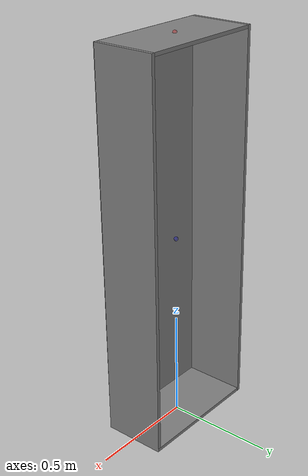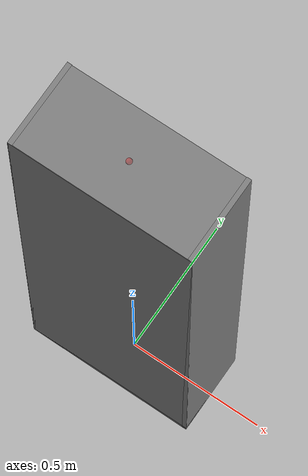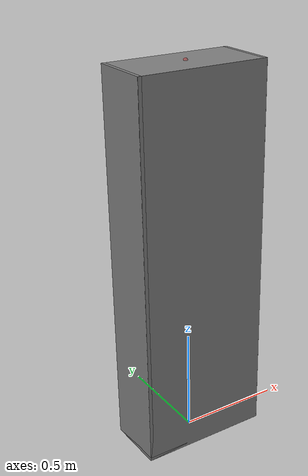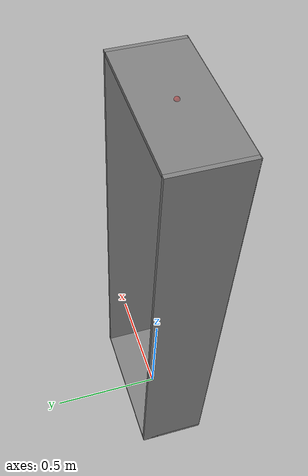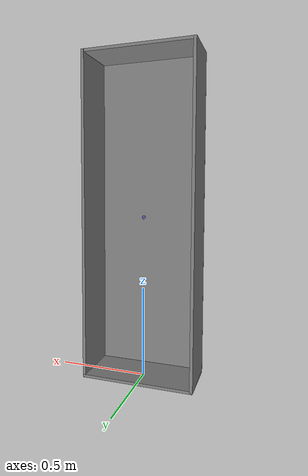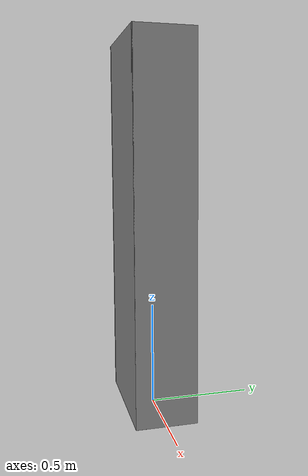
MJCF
<mujoco model="lab_shelf_cabinet">
  <default>
    <default class="visual">
      <geom group="1" type="box" contype="0" conaffinity="0" density="100"/>
    </default>
    <default class="collision">
      <geom group="0" type="box" density="100" solimp="0.95 0.98 0.001" solref="0.004 1" rgba="1 1 1 0.25"/>
    </default>
    <default class="spawn">
      <geom group="1" rgba="1 1 1 0" contype="0" conaffinity="0" density="0" mass="0"/>
    </default>
  </default>

  <asset>
    <texture name="white_tex" builtin="flat" rgb1="1 1 1" rgb2="1 1 1" width="32" height="32"/>
    <material name="white_mat" texture="white_tex" shininess="0.2" reflectance="0.05" rgba="1 1 1 1"/>
  </asset>

  <!-- H = 1.80797 m; shelf z tops = 0.3317, 0.5888, 0.9159, 1.2174, 1.5001, 1.8080 -->
  <worldbody>
    <body>
      <body name="object">
        <!-- Sides (centered at H/2) -->
        <geom class="collision" name="side_left" size="0.008255 0.146050 0.903985" pos="-0.302895 0 0.903985"/>
        <geom class="visual" name="side_left_vis" size="0.008255 0.146050 0.903985" pos="-0.302895 0 0.903985"/>
        <geom class="collision" name="side_right" size="0.008255 0.146050 0.903985" pos="0.302895 0 0.903985"/>
        <geom class="visual" name="side_right_vis" size="0.008255 0.146050 0.903985" pos="0.302895 0 0.903985"/>
        <!-- Bottom panel (sits on floor) -->
        <geom class="collision" name="bottom" size="0.311150 0.146050 0.007938" pos="0 0 0.007938"/>
        <geom class="visual" name="bottom_vis" size="0.311150 0.146050 0.007938" pos="0 0 0.007938"/>
        <!-- Back panel -->
        <geom class="collision" name="back" size="0.311150 0.001270 0.903985" pos="0 -0.144780 0.903985"/>
        <geom class="visual" name="back_vis" size="0.311150 0.001270 0.903985" pos="0 -0.144780 0.903985"/>
        <!-- Top panel -->
        <geom class="collision" name="top" size="0.294640 0.144780 0.007938" pos="0 0 1.800035"/>
        <geom class="visual" name="top_vis" size="0.294640 0.144780 0.007938" pos="0 0 1.800035"/>

        <!-- Fixed Shelf Separator, id: 0-->
        <geom class="spawn" name="spawn_0" type="box" size="0.05 0.05 0.001" pos="0 0 0.903986"/>
        <!-- Shelf Pegs, Lower Part, ids: 1-19 -->
        <geom class="spawn" name="spawn_peg_1" type="box" size="0.05 0.05 0.001" pos="0 0 0.210"/>
        <geom class="spawn" name="spawn_peg_2" type="box" size="0.05 0.05 0.001" pos="0 0 0.242"/>
        <geom class="spawn" name="spawn_peg_3" type="box" size="0.05 0.05 0.001" pos="0 0 0.274"/>
        <geom class="spawn" name="spawn_peg_4" type="box" size="0.05 0.05 0.001" pos="0 0 0.306"/>
        <geom class="spawn" name="spawn_peg_5" type="box" size="0.05 0.05 0.001" pos="0 0 0.338"/>
        <geom class="spawn" name="spawn_peg_6" type="box" size="0.05 0.05 0.001" pos="0 0 0.370"/>
        <geom class="spawn" name="spawn_peg_7" type="box" size="0.05 0.05 0.001" pos="0 0 0.402"/>
        <geom class="spawn" name="spawn_peg_8" type="box" size="0.05 0.05 0.001" pos="0 0 0.434"/>
        <geom class="spawn" name="spawn_peg_9" type="box" size="0.05 0.05 0.001" pos="0 0 0.466"/>
        <geom class="spawn" name="spawn_peg_10" type="box" size="0.05 0.05 0.001" pos="0 0 0.498"/>
        <geom class="spawn" name="spawn_peg_11" type="box" size="0.05 0.05 0.001" pos="0 0 0.530"/>
        <geom class="spawn" name="spawn_peg_12" type="box" size="0.05 0.05 0.001" pos="0 0 0.562"/>
        <geom class="spawn" name="spawn_peg_13" type="box" size="0.05 0.05 0.001" pos="0 0 0.594"/>
        <geom class="spawn" name="spawn_peg_14" type="box" size="0.05 0.05 0.001" pos="0 0 0.626"/>
        <geom class="spawn" name="spawn_peg_15" type="box" size="0.05 0.05 0.001" pos="0 0 0.658"/>
        <geom class="spawn" name="spawn_peg_16" type="box" size="0.05 0.05 0.001" pos="0 0 0.690"/>
        <geom class="spawn" name="spawn_peg_17" type="box" size="0.05 0.05 0.001" pos="0 0 0.722"/>
        <geom class="spawn" name="spawn_peg_18" type="box" size="0.05 0.05 0.001" pos="0 0 0.754"/>
        <!-- Shelf Pegs, Upper Part, ids: 20-37 -->
        <geom class="spawn" name="spawn_peg_19" type="box" size="0.05 0.05 0.001" pos="0 0 1.120"/>
        <geom class="spawn" name="spawn_peg_20" type="box" size="0.05 0.05 0.001" pos="0 0 1.152"/>
        <geom class="spawn" name="spawn_peg_21" type="box" size="0.05 0.05 0.001" pos="0 0 1.184"/>
        <geom class="spawn" name="spawn_peg_22" type="box" size="0.05 0.05 0.001" pos="0 0 1.216"/>
        <geom class="spawn" name="spawn_peg_23" type="box" size="0.05 0.05 0.001" pos="0 0 1.248"/>
        <geom class="spawn" name="spawn_peg_24" type="box" size="0.05 0.05 0.001" pos="0 0 1.280"/>
        <geom class="spawn" name="spawn_peg_25" type="box" size="0.05 0.05 0.001" pos="0 0 1.312"/>
        <geom class="spawn" name="spawn_peg_26" type="box" size="0.05 0.05 0.001" pos="0 0 1.344"/>
        <geom class="spawn" name="spawn_peg_27" type="box" size="0.05 0.05 0.001" pos="0 0 1.376"/>
        <geom class="spawn" name="spawn_peg_28" type="box" size="0.05 0.05 0.001" pos="0 0 1.408"/>
        <geom class="spawn" name="spawn_peg_29" type="box" size="0.05 0.05 0.001" pos="0 0 1.440"/>
        <geom class="spawn" name="spawn_peg_30" type="box" size="0.05 0.05 0.001" pos="0 0 1.472"/>
        <geom class="spawn" name="spawn_peg_31" type="box" size="0.05 0.05 0.001" pos="0 0 1.504"/>
        <geom class="spawn" name="spawn_peg_32" type="box" size="0.05 0.05 0.001" pos="0 0 1.536"/>
        <geom class="spawn" name="spawn_peg_33" type="box" size="0.05 0.05 0.001" pos="0 0 1.568"/>
        <geom class="spawn" name="spawn_peg_34" type="box" size="0.05 0.05 0.001" pos="0 0 1.600"/>
        <geom class="spawn" name="spawn_peg_35" type="box" size="0.05 0.05 0.001" pos="0 0 1.632"/>
        <geom class="spawn" name="spawn_peg_36" type="box" size="0.05 0.05 0.001" pos="0 0 1.664"/>
      </body>

      <!-- Sites for reference points -->
      <site name="top_site" pos="0 0 1.807972" size="0.01 0.01 0.01" rgba="1 0 0 0.3"/>
      <site name="bottom_site" pos="0 0 0.000000" size="0.01 0.01 0.01" rgba="0 1 0 0.3"/>
      <site name="horizontal_radius_site" pos="0 0 0.903985" size="0.01 0.01 0.01" rgba="0 0 1 0.3"/>
    </body>
  </worldbody>
</mujoco>
